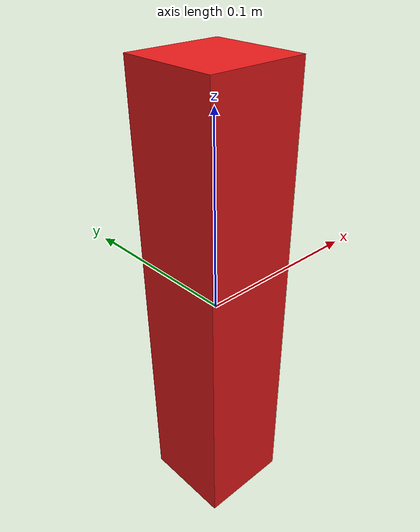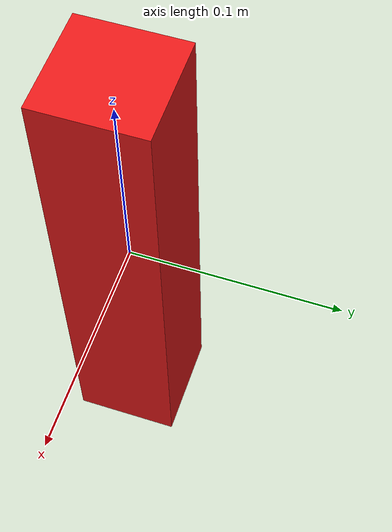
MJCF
<mujoco model="red_obstacle">
  <asset>
    <material name="red_mat" rgba="0.9 0.1 0.1 1"/>
  </asset>
  <worldbody>
    <body>
      <body name="object">
        <geom name="red_obstacle_g0" type="box" size="0.025 0.025 0.12"
              material="red_mat" mass="0.5" friction="1 0.005 0.0001"
              group="0" contype="1" conaffinity="1"/>
        <geom name="red_obstacle_v0" type="box" size="0.025 0.025 0.12"
              material="red_mat" group="1" contype="0" conaffinity="0"/>
      </body>
      <site rgba="0 0 0 0" size="0.005" pos="0 0 -0.12" name="bottom_site"/>
      <site rgba="0 0 0 0" size="0.005" pos="0 0 0.14" name="top_site"/>
      <site rgba="0 0 0 0" size="0.005" pos="0.04 0.04 0" name="horizontal_radius_site"/>
    </body>
  </worldbody>
</mujoco>
